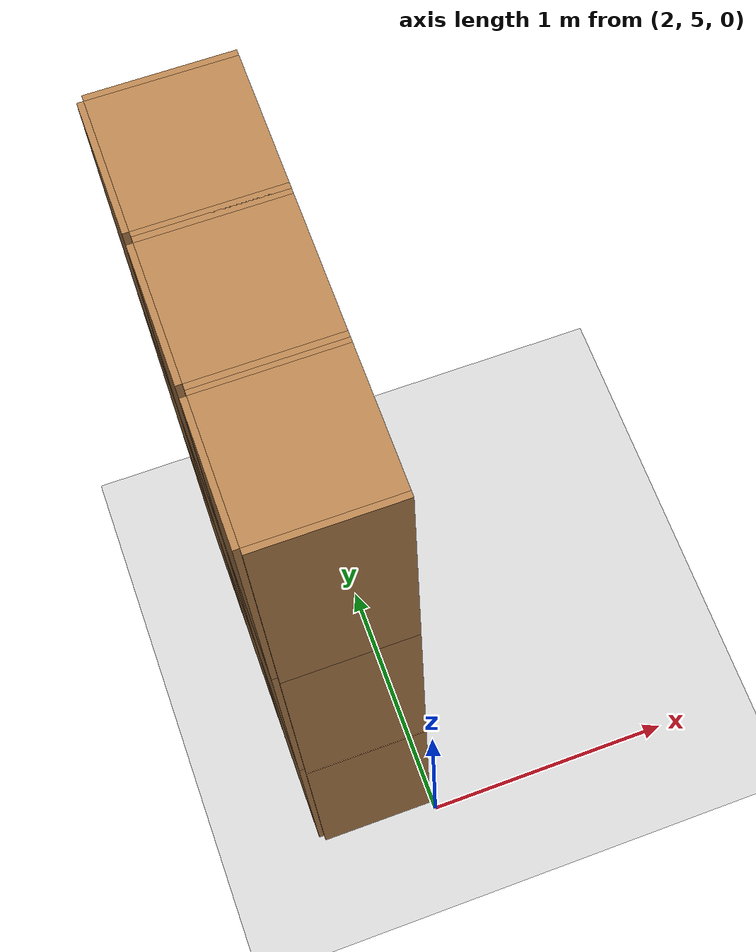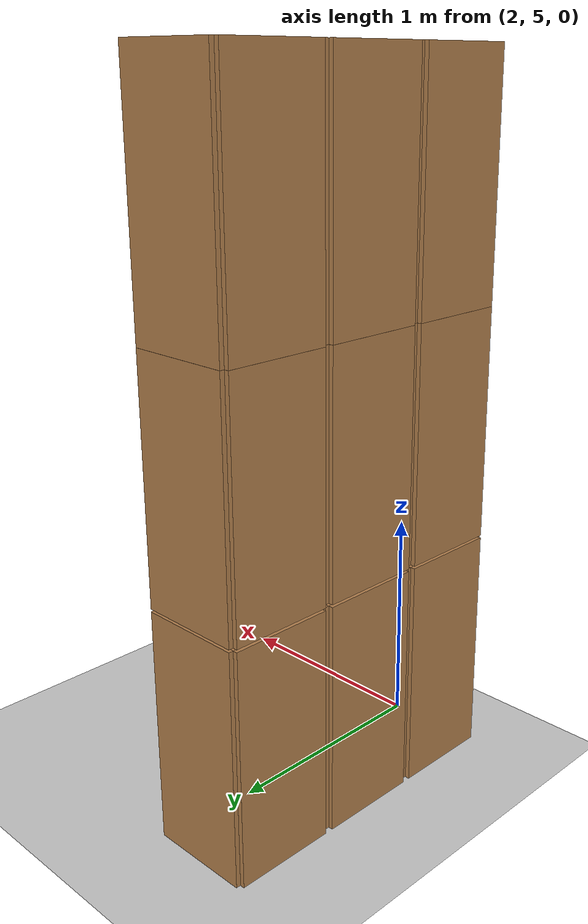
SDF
<sdf version="1.6">
 <world name="default">
  <model name="ground_plane">
   <static>1</static>
   <link name="link">
    <collision name="collision">
     <geometry><plane><normal>0 0 1</normal><size>100 100</size></plane></geometry>
     <surface>
      <contact><collide_bitmask>65535</collide_bitmask></contact>
      <friction><ode><mu>100</mu><mu2>50</mu2></ode></friction>
     </surface>
    </collision>
    <visual name="visual">
     <cast_shadows>0</cast_shadows>
     <geometry><plane><normal>0 0 1</normal><size>100 100</size></plane></geometry>
     <material>
      <script><uri>file://media/materials/scripts/gazebo.material</uri><name>Gazebo/Grey</name></script>
     </material>
    </visual>
   </link>
  </model>
  <model name="Locker18_clone_4_clone_2_clone_1_clone_clone_clone_1">
   <model name="Locker18">
    <model name="Locker3">
     <model name="cabinet">
      <static>1</static>
      <link name="cabinet_bottom_plate">
       <inertial>
        <pose>0 0 -1 0 -0 0</pose>
        <inertia><ixx>2.05</ixx><ixy>0</ixy><ixz>0</ixz><iyy>2.05</iyy><iyz>0</iyz><izz>2.05</izz></inertia>
        <mass>25</mass>
       </inertial>
       <collision name="cabinet_bottom_plate_geom">
        <pose>0 0 0.01 0 -0 0</pose>
        <geometry><box><size>0.45 0.45 0.02</size></box></geometry>
       </collision>
       <visual name="cabinet_bottom_plate_geom_visual">
        <pose>0 0 0.01 0 -0 0</pose>
        <geometry><box><size>0.45 0.45 0.02</size></box></geometry>
        <material>
         <script><uri>file://media/materials/scripts/gazebo.material</uri><name>Gazebo/Wood</name></script>
        </material>
       </visual>
       <collision name="cabinet_bottom_plate_geom_cabinet_back_plate">
        <pose>0.235 0 0.51 0 -0 0</pose>
        <geometry><box><size>0.02 0.45 1.02</size></box></geometry>
       </collision>
       <visual name="cabinet_bottom_plate_geom_cabinet_back_plate_visual">
        <pose>0.235 0 0.51 0 -0 0</pose>
        <geometry><box><size>0.02 0.45 1.02</size></box></geometry>
        <material>
         <script><uri>file://media/materials/scripts/gazebo.material</uri><name>Gazebo/Wood</name></script>
        </material>
       </visual>
       <collision name="cabinet_bottom_plate_geom_cabinet_left_plate">
        <pose>0 0.235 0.51 0 -0 0</pose>
        <geometry><box><size>0.45 0.02 1.02</size></box></geometry>
       </collision>
       <visual name="cabinet_bottom_plate_geom_cabinet_left_plate_visual">
        <pose>0 0.235 0.51 0 -0 0</pose>
        <geometry><box><size>0.45 0.02 1.02</size></box></geometry>
        <material>
         <script><uri>file://media/materials/scripts/gazebo.material</uri><name>Gazebo/Wood</name></script>
        </material>
       </visual>
       <collision name="cabinet_bottom_plate_geom_cabinet_middle_plate">
        <pose>0 0 0.51 0 -0 0</pose>
        <geometry><box><size>0.45 0.45 0.02</size></box></geometry>
       </collision>
       <visual name="cabinet_bottom_plate_geom_cabinet_middle_plate_visual">
        <pose>0 0 0.51 0 -0 0</pose>
        <geometry><box><size>0.45 0.45 0.02</size></box></geometry>
        <material>
         <script><uri>file://media/materials/scripts/gazebo.material</uri><name>Gazebo/Wood</name></script>
        </material>
       </visual>
       <collision name="cabinet_bottom_plate_geom_cabinet_right_plate">
        <pose>0 -0.235 0.51 0 -0 0</pose>
        <geometry><box><size>0.45 0.02 1.02</size></box></geometry>
       </collision>
       <visual name="cabinet_bottom_plate_geom_cabinet_right_plate_visual">
        <pose>0 -0.235 0.51 0 -0 0</pose>
        <geometry><box><size>0.45 0.02 1.02</size></box></geometry>
        <material>
         <script><uri>file://media/materials/scripts/gazebo.material</uri><name>Gazebo/Wood</name></script>
        </material>
       </visual>
       <collision name="cabinet_bottom_plate_geom_cabinet_top_plate">
        <pose>0 0 1.01 0 -0 0</pose>
        <geometry><box><size>0.45 0.45 0.02</size></box></geometry>
       </collision>
       <visual name="cabinet_bottom_plate_geom_cabinet_top_plate_visual">
        <pose>0 0 1.01 0 -0 0</pose>
        <geometry><box><size>0.45 0.45 0.02</size></box></geometry>
        <material>
         <script><uri>file://media/materials/scripts/gazebo.material</uri><name>Gazebo/Wood</name></script>
        </material>
       </visual>
      </link>
      <pose>-0.676968 1.45758 0 0 -0 0</pose>
     </model>
     <model name="cabinet_clone">
      <static>1</static>
      <link name="cabinet_bottom_plate">
       <inertial>
        <pose>0 0 -1 0 -0 0</pose>
        <inertia><ixx>2.05</ixx><ixy>0</ixy><ixz>0</ixz><iyy>2.05</iyy><iyz>0</iyz><izz>2.05</izz></inertia>
        <mass>25</mass>
       </inertial>
       <collision name="cabinet_bottom_plate_geom">
        <pose>0 0 0.01 0 -0 0</pose>
        <geometry><box><size>0.45 0.45 0.02</size></box></geometry>
       </collision>
       <visual name="cabinet_bottom_plate_geom_visual">
        <pose>0 0 0.01 0 -0 0</pose>
        <geometry><box><size>0.45 0.45 0.02</size></box></geometry>
        <material>
         <script><uri>file://media/materials/scripts/gazebo.material</uri><name>Gazebo/Wood</name></script>
        </material>
       </visual>
       <collision name="cabinet_bottom_plate_geom_cabinet_back_plate">
        <pose>0.235 0 0.51 0 -0 0</pose>
        <geometry><box><size>0.02 0.45 1.02</size></box></geometry>
       </collision>
       <visual name="cabinet_bottom_plate_geom_cabinet_back_plate_visual">
        <pose>0.235 0 0.51 0 -0 0</pose>
        <geometry><box><size>0.02 0.45 1.02</size></box></geometry>
        <material>
         <script><uri>file://media/materials/scripts/gazebo.material</uri><name>Gazebo/Wood</name></script>
        </material>
       </visual>
       <collision name="cabinet_bottom_plate_geom_cabinet_left_plate">
        <pose>0 0.235 0.51 0 -0 0</pose>
        <geometry><box><size>0.45 0.02 1.02</size></box></geometry>
       </collision>
       <visual name="cabinet_bottom_plate_geom_cabinet_left_plate_visual">
        <pose>0 0.235 0.51 0 -0 0</pose>
        <geometry><box><size>0.45 0.02 1.02</size></box></geometry>
        <material>
         <script><uri>file://media/materials/scripts/gazebo.material</uri><name>Gazebo/Wood</name></script>
        </material>
       </visual>
       <collision name="cabinet_bottom_plate_geom_cabinet_middle_plate">
        <pose>0 0 0.51 0 -0 0</pose>
        <geometry><box><size>0.45 0.45 0.02</size></box></geometry>
       </collision>
       <visual name="cabinet_bottom_plate_geom_cabinet_middle_plate_visual">
        <pose>0 0 0.51 0 -0 0</pose>
        <geometry><box><size>0.45 0.45 0.02</size></box></geometry>
        <material>
         <script><uri>file://media/materials/scripts/gazebo.material</uri><name>Gazebo/Wood</name></script>
        </material>
       </visual>
       <collision name="cabinet_bottom_plate_geom_cabinet_right_plate">
        <pose>0 -0.235 0.51 0 -0 0</pose>
        <geometry><box><size>0.45 0.02 1.02</size></box></geometry>
       </collision>
       <visual name="cabinet_bottom_plate_geom_cabinet_right_plate_visual">
        <pose>0 -0.235 0.51 0 -0 0</pose>
        <geometry><box><size>0.45 0.02 1.02</size></box></geometry>
        <material>
         <script><uri>file://media/materials/scripts/gazebo.material</uri><name>Gazebo/Wood</name></script>
        </material>
       </visual>
       <collision name="cabinet_bottom_plate_geom_cabinet_top_plate">
        <pose>0 0 1.01 0 -0 0</pose>
        <geometry><box><size>0.45 0.45 0.02</size></box></geometry>
       </collision>
       <visual name="cabinet_bottom_plate_geom_cabinet_top_plate_visual">
        <pose>0 0 1.01 0 -0 0</pose>
        <geometry><box><size>0.45 0.45 0.02</size></box></geometry>
        <material>
         <script><uri>file://media/materials/scripts/gazebo.material</uri><name>Gazebo/Wood</name></script>
        </material>
       </visual>
      </link>
      <pose>-0.676968 0.970971 0 0 -0 0</pose>
     </model>
     <model name="cabinet_clone_0">
      <static>1</static>
      <link name="cabinet_bottom_plate">
       <inertial>
        <pose>0 0 -1 0 -0 0</pose>
        <inertia><ixx>2.05</ixx><ixy>0</ixy><ixz>0</ixz><iyy>2.05</iyy><iyz>0</iyz><izz>2.05</izz></inertia>
        <mass>25</mass>
       </inertial>
       <collision name="cabinet_bottom_plate_geom">
        <pose>0 0 0.01 0 -0 0</pose>
        <geometry><box><size>0.45 0.45 0.02</size></box></geometry>
       </collision>
       <visual name="cabinet_bottom_plate_geom_visual">
        <pose>0 0 0.01 0 -0 0</pose>
        <geometry><box><size>0.45 0.45 0.02</size></box></geometry>
        <material>
         <script><uri>file://media/materials/scripts/gazebo.material</uri><name>Gazebo/Wood</name></script>
        </material>
       </visual>
       <collision name="cabinet_bottom_plate_geom_cabinet_back_plate">
        <pose>0.235 0 0.51 0 -0 0</pose>
        <geometry><box><size>0.02 0.45 1.02</size></box></geometry>
       </collision>
       <visual name="cabinet_bottom_plate_geom_cabinet_back_plate_visual">
        <pose>0.235 0 0.51 0 -0 0</pose>
        <geometry><box><size>0.02 0.45 1.02</size></box></geometry>
        <material>
         <script><uri>file://media/materials/scripts/gazebo.material</uri><name>Gazebo/Wood</name></script>
        </material>
       </visual>
       <collision name="cabinet_bottom_plate_geom_cabinet_left_plate">
        <pose>0 0.235 0.51 0 -0 0</pose>
        <geometry><box><size>0.45 0.02 1.02</size></box></geometry>
       </collision>
       <visual name="cabinet_bottom_plate_geom_cabinet_left_plate_visual">
        <pose>0 0.235 0.51 0 -0 0</pose>
        <geometry><box><size>0.45 0.02 1.02</size></box></geometry>
        <material>
         <script><uri>file://media/materials/scripts/gazebo.material</uri><name>Gazebo/Wood</name></script>
        </material>
       </visual>
       <collision name="cabinet_bottom_plate_geom_cabinet_middle_plate">
        <pose>0 0 0.51 0 -0 0</pose>
        <geometry><box><size>0.45 0.45 0.02</size></box></geometry>
       </collision>
       <visual name="cabinet_bottom_plate_geom_cabinet_middle_plate_visual">
        <pose>0 0 0.51 0 -0 0</pose>
        <geometry><box><size>0.45 0.45 0.02</size></box></geometry>
        <material>
         <script><uri>file://media/materials/scripts/gazebo.material</uri><name>Gazebo/Wood</name></script>
        </material>
       </visual>
       <collision name="cabinet_bottom_plate_geom_cabinet_right_plate">
        <pose>0 -0.235 0.51 0 -0 0</pose>
        <geometry><box><size>0.45 0.02 1.02</size></box></geometry>
       </collision>
       <visual name="cabinet_bottom_plate_geom_cabinet_right_plate_visual">
        <pose>0 -0.235 0.51 0 -0 0</pose>
        <geometry><box><size>0.45 0.02 1.02</size></box></geometry>
        <material>
         <script><uri>file://media/materials/scripts/gazebo.material</uri><name>Gazebo/Wood</name></script>
        </material>
       </visual>
       <collision name="cabinet_bottom_plate_geom_cabinet_top_plate">
        <pose>0 0 1.01 0 -0 0</pose>
        <geometry><box><size>0.45 0.45 0.02</size></box></geometry>
       </collision>
       <visual name="cabinet_bottom_plate_geom_cabinet_top_plate_visual">
        <pose>0 0 1.01 0 -0 0</pose>
        <geometry><box><size>0.45 0.45 0.02</size></box></geometry>
        <material>
         <script><uri>file://media/materials/scripts/gazebo.material</uri><name>Gazebo/Wood</name></script>
        </material>
       </visual>
      </link>
      <pose>-0.676968 0.48391 0 0 -0 0</pose>
     </model>
     <static>0</static>
     <pose>0 3e-06 -1.02763 0 -0 0</pose>
    </model>
    <model name="Locker3_clone">
     <model name="cabinet">
      <static>1</static>
      <link name="cabinet_bottom_plate">
       <inertial>
        <pose>0 0 -1 0 -0 0</pose>
        <inertia><ixx>2.05</ixx><ixy>0</ixy><ixz>0</ixz><iyy>2.05</iyy><iyz>0</iyz><izz>2.05</izz></inertia>
        <mass>25</mass>
       </inertial>
       <collision name="cabinet_bottom_plate_geom">
        <pose>0 0 0.01 0 -0 0</pose>
        <geometry><box><size>0.45 0.45 0.02</size></box></geometry>
       </collision>
       <visual name="cabinet_bottom_plate_geom_visual">
        <pose>0 0 0.01 0 -0 0</pose>
        <geometry><box><size>0.45 0.45 0.02</size></box></geometry>
        <material>
         <script><uri>file://media/materials/scripts/gazebo.material</uri><name>Gazebo/Wood</name></script>
        </material>
       </visual>
       <collision name="cabinet_bottom_plate_geom_cabinet_back_plate">
        <pose>0.235 0 0.51 0 -0 0</pose>
        <geometry><box><size>0.02 0.45 1.02</size></box></geometry>
       </collision>
       <visual name="cabinet_bottom_plate_geom_cabinet_back_plate_visual">
        <pose>0.235 0 0.51 0 -0 0</pose>
        <geometry><box><size>0.02 0.45 1.02</size></box></geometry>
        <material>
         <script><uri>file://media/materials/scripts/gazebo.material</uri><name>Gazebo/Wood</name></script>
        </material>
       </visual>
       <collision name="cabinet_bottom_plate_geom_cabinet_left_plate">
        <pose>0 0.235 0.51 0 -0 0</pose>
        <geometry><box><size>0.45 0.02 1.02</size></box></geometry>
       </collision>
       <visual name="cabinet_bottom_plate_geom_cabinet_left_plate_visual">
        <pose>0 0.235 0.51 0 -0 0</pose>
        <geometry><box><size>0.45 0.02 1.02</size></box></geometry>
        <material>
         <script><uri>file://media/materials/scripts/gazebo.material</uri><name>Gazebo/Wood</name></script>
        </material>
       </visual>
       <collision name="cabinet_bottom_plate_geom_cabinet_middle_plate">
        <pose>0 0 0.51 0 -0 0</pose>
        <geometry><box><size>0.45 0.45 0.02</size></box></geometry>
       </collision>
       <visual name="cabinet_bottom_plate_geom_cabinet_middle_plate_visual">
        <pose>0 0 0.51 0 -0 0</pose>
        <geometry><box><size>0.45 0.45 0.02</size></box></geometry>
        <material>
         <script><uri>file://media/materials/scripts/gazebo.material</uri><name>Gazebo/Wood</name></script>
        </material>
       </visual>
       <collision name="cabinet_bottom_plate_geom_cabinet_right_plate">
        <pose>0 -0.235 0.51 0 -0 0</pose>
        <geometry><box><size>0.45 0.02 1.02</size></box></geometry>
       </collision>
       <visual name="cabinet_bottom_plate_geom_cabinet_right_plate_visual">
        <pose>0 -0.235 0.51 0 -0 0</pose>
        <geometry><box><size>0.45 0.02 1.02</size></box></geometry>
        <material>
         <script><uri>file://media/materials/scripts/gazebo.material</uri><name>Gazebo/Wood</name></script>
        </material>
       </visual>
       <collision name="cabinet_bottom_plate_geom_cabinet_top_plate">
        <pose>0 0 1.01 0 -0 0</pose>
        <geometry><box><size>0.45 0.45 0.02</size></box></geometry>
       </collision>
       <visual name="cabinet_bottom_plate_geom_cabinet_top_plate_visual">
        <pose>0 0 1.01 0 -0 0</pose>
        <geometry><box><size>0.45 0.45 0.02</size></box></geometry>
        <material>
         <script><uri>file://media/materials/scripts/gazebo.material</uri><name>Gazebo/Wood</name></script>
        </material>
       </visual>
      </link>
      <pose>-0.676968 1.45758 0 0 -0 0</pose>
     </model>
     <model name="cabinet_clone">
      <static>1</static>
      <link name="cabinet_bottom_plate">
       <inertial>
        <pose>0 0 -1 0 -0 0</pose>
        <inertia><ixx>2.05</ixx><ixy>0</ixy><ixz>0</ixz><iyy>2.05</iyy><iyz>0</iyz><izz>2.05</izz></inertia>
        <mass>25</mass>
       </inertial>
       <collision name="cabinet_bottom_plate_geom">
        <pose>0 0 0.01 0 -0 0</pose>
        <geometry><box><size>0.45 0.45 0.02</size></box></geometry>
       </collision>
       <visual name="cabinet_bottom_plate_geom_visual">
        <pose>0 0 0.01 0 -0 0</pose>
        <geometry><box><size>0.45 0.45 0.02</size></box></geometry>
        <material>
         <script><uri>file://media/materials/scripts/gazebo.material</uri><name>Gazebo/Wood</name></script>
        </material>
       </visual>
       <collision name="cabinet_bottom_plate_geom_cabinet_back_plate">
        <pose>0.235 0 0.51 0 -0 0</pose>
        <geometry><box><size>0.02 0.45 1.02</size></box></geometry>
       </collision>
       <visual name="cabinet_bottom_plate_geom_cabinet_back_plate_visual">
        <pose>0.235 0 0.51 0 -0 0</pose>
        <geometry><box><size>0.02 0.45 1.02</size></box></geometry>
        <material>
         <script><uri>file://media/materials/scripts/gazebo.material</uri><name>Gazebo/Wood</name></script>
        </material>
       </visual>
       <collision name="cabinet_bottom_plate_geom_cabinet_left_plate">
        <pose>0 0.235 0.51 0 -0 0</pose>
        <geometry><box><size>0.45 0.02 1.02</size></box></geometry>
       </collision>
       <visual name="cabinet_bottom_plate_geom_cabinet_left_plate_visual">
        <pose>0 0.235 0.51 0 -0 0</pose>
        <geometry><box><size>0.45 0.02 1.02</size></box></geometry>
        <material>
         <script><uri>file://media/materials/scripts/gazebo.material</uri><name>Gazebo/Wood</name></script>
        </material>
       </visual>
       <collision name="cabinet_bottom_plate_geom_cabinet_middle_plate">
        <pose>0 0 0.51 0 -0 0</pose>
        <geometry><box><size>0.45 0.45 0.02</size></box></geometry>
       </collision>
       <visual name="cabinet_bottom_plate_geom_cabinet_middle_plate_visual">
        <pose>0 0 0.51 0 -0 0</pose>
        <geometry><box><size>0.45 0.45 0.02</size></box></geometry>
        <material>
         <script><uri>file://media/materials/scripts/gazebo.material</uri><name>Gazebo/Wood</name></script>
        </material>
       </visual>
       <collision name="cabinet_bottom_plate_geom_cabinet_right_plate">
        <pose>0 -0.235 0.51 0 -0 0</pose>
        <geometry><box><size>0.45 0.02 1.02</size></box></geometry>
       </collision>
       <visual name="cabinet_bottom_plate_geom_cabinet_right_plate_visual">
        <pose>0 -0.235 0.51 0 -0 0</pose>
        <geometry><box><size>0.45 0.02 1.02</size></box></geometry>
        <material>
         <script><uri>file://media/materials/scripts/gazebo.material</uri><name>Gazebo/Wood</name></script>
        </material>
       </visual>
       <collision name="cabinet_bottom_plate_geom_cabinet_top_plate">
        <pose>0 0 1.01 0 -0 0</pose>
        <geometry><box><size>0.45 0.45 0.02</size></box></geometry>
       </collision>
       <visual name="cabinet_bottom_plate_geom_cabinet_top_plate_visual">
        <pose>0 0 1.01 0 -0 0</pose>
        <geometry><box><size>0.45 0.45 0.02</size></box></geometry>
        <material>
         <script><uri>file://media/materials/scripts/gazebo.material</uri><name>Gazebo/Wood</name></script>
        </material>
       </visual>
      </link>
      <pose>-0.676968 0.970971 0 0 -0 0</pose>
     </model>
     <model name="cabinet_clone_0">
      <static>1</static>
      <link name="cabinet_bottom_plate">
       <inertial>
        <pose>0 0 -1 0 -0 0</pose>
        <inertia><ixx>2.05</ixx><ixy>0</ixy><ixz>0</ixz><iyy>2.05</iyy><iyz>0</iyz><izz>2.05</izz></inertia>
        <mass>25</mass>
       </inertial>
       <collision name="cabinet_bottom_plate_geom">
        <pose>0 0 0.01 0 -0 0</pose>
        <geometry><box><size>0.45 0.45 0.02</size></box></geometry>
       </collision>
       <visual name="cabinet_bottom_plate_geom_visual">
        <pose>0 0 0.01 0 -0 0</pose>
        <geometry><box><size>0.45 0.45 0.02</size></box></geometry>
        <material>
         <script><uri>file://media/materials/scripts/gazebo.material</uri><name>Gazebo/Wood</name></script>
        </material>
       </visual>
       <collision name="cabinet_bottom_plate_geom_cabinet_back_plate">
        <pose>0.235 0 0.51 0 -0 0</pose>
        <geometry><box><size>0.02 0.45 1.02</size></box></geometry>
       </collision>
       <visual name="cabinet_bottom_plate_geom_cabinet_back_plate_visual">
        <pose>0.235 0 0.51 0 -0 0</pose>
        <geometry><box><size>0.02 0.45 1.02</size></box></geometry>
        <material>
         <script><uri>file://media/materials/scripts/gazebo.material</uri><name>Gazebo/Wood</name></script>
        </material>
       </visual>
       <collision name="cabinet_bottom_plate_geom_cabinet_left_plate">
        <pose>0 0.235 0.51 0 -0 0</pose>
        <geometry><box><size>0.45 0.02 1.02</size></box></geometry>
       </collision>
       <visual name="cabinet_bottom_plate_geom_cabinet_left_plate_visual">
        <pose>0 0.235 0.51 0 -0 0</pose>
        <geometry><box><size>0.45 0.02 1.02</size></box></geometry>
        <material>
         <script><uri>file://media/materials/scripts/gazebo.material</uri><name>Gazebo/Wood</name></script>
        </material>
       </visual>
       <collision name="cabinet_bottom_plate_geom_cabinet_middle_plate">
        <pose>0 0 0.51 0 -0 0</pose>
        <geometry><box><size>0.45 0.45 0.02</size></box></geometry>
       </collision>
       <visual name="cabinet_bottom_plate_geom_cabinet_middle_plate_visual">
        <pose>0 0 0.51 0 -0 0</pose>
        <geometry><box><size>0.45 0.45 0.02</size></box></geometry>
        <material>
         <script><uri>file://media/materials/scripts/gazebo.material</uri><name>Gazebo/Wood</name></script>
        </material>
       </visual>
       <collision name="cabinet_bottom_plate_geom_cabinet_right_plate">
        <pose>0 -0.235 0.51 0 -0 0</pose>
        <geometry><box><size>0.45 0.02 1.02</size></box></geometry>
       </collision>
       <visual name="cabinet_bottom_plate_geom_cabinet_right_plate_visual">
        <pose>0 -0.235 0.51 0 -0 0</pose>
        <geometry><box><size>0.45 0.02 1.02</size></box></geometry>
        <material>
         <script><uri>file://media/materials/scripts/gazebo.material</uri><name>Gazebo/Wood</name></script>
        </material>
       </visual>
       <collision name="cabinet_bottom_plate_geom_cabinet_top_plate">
        <pose>0 0 1.01 0 -0 0</pose>
        <geometry><box><size>0.45 0.45 0.02</size></box></geometry>
       </collision>
       <visual name="cabinet_bottom_plate_geom_cabinet_top_plate_visual">
        <pose>0 0 1.01 0 -0 0</pose>
        <geometry><box><size>0.45 0.45 0.02</size></box></geometry>
        <material>
         <script><uri>file://media/materials/scripts/gazebo.material</uri><name>Gazebo/Wood</name></script>
        </material>
       </visual>
      </link>
      <pose>-0.676968 0.48391 0 0 -0 0</pose>
     </model>
     <static>0</static>
     <pose>0 3e-06 0.003717 0 -0 0</pose>
    </model>
    <model name="Locker3_clone_clone">
     <model name="cabinet">
      <static>1</static>
      <link name="cabinet_bottom_plate">
       <inertial>
        <pose>0 0 -1 0 -0 0</pose>
        <inertia><ixx>2.05</ixx><ixy>0</ixy><ixz>0</ixz><iyy>2.05</iyy><iyz>0</iyz><izz>2.05</izz></inertia>
        <mass>25</mass>
       </inertial>
       <collision name="cabinet_bottom_plate_geom">
        <pose>0 0 0.01 0 -0 0</pose>
        <geometry><box><size>0.45 0.45 0.02</size></box></geometry>
       </collision>
       <visual name="cabinet_bottom_plate_geom_visual">
        <pose>0 0 0.01 0 -0 0</pose>
        <geometry><box><size>0.45 0.45 0.02</size></box></geometry>
        <material>
         <script><uri>file://media/materials/scripts/gazebo.material</uri><name>Gazebo/Wood</name></script>
        </material>
       </visual>
       <collision name="cabinet_bottom_plate_geom_cabinet_back_plate">
        <pose>0.235 0 0.51 0 -0 0</pose>
        <geometry><box><size>0.02 0.45 1.02</size></box></geometry>
       </collision>
       <visual name="cabinet_bottom_plate_geom_cabinet_back_plate_visual">
        <pose>0.235 0 0.51 0 -0 0</pose>
        <geometry><box><size>0.02 0.45 1.02</size></box></geometry>
        <material>
         <script><uri>file://media/materials/scripts/gazebo.material</uri><name>Gazebo/Wood</name></script>
        </material>
       </visual>
       <collision name="cabinet_bottom_plate_geom_cabinet_left_plate">
        <pose>0 0.235 0.51 0 -0 0</pose>
        <geometry><box><size>0.45 0.02 1.02</size></box></geometry>
       </collision>
       <visual name="cabinet_bottom_plate_geom_cabinet_left_plate_visual">
        <pose>0 0.235 0.51 0 -0 0</pose>
        <geometry><box><size>0.45 0.02 1.02</size></box></geometry>
        <material>
         <script><uri>file://media/materials/scripts/gazebo.material</uri><name>Gazebo/Wood</name></script>
        </material>
       </visual>
       <collision name="cabinet_bottom_plate_geom_cabinet_middle_plate">
        <pose>0 0 0.51 0 -0 0</pose>
        <geometry><box><size>0.45 0.45 0.02</size></box></geometry>
       </collision>
       <visual name="cabinet_bottom_plate_geom_cabinet_middle_plate_visual">
        <pose>0 0 0.51 0 -0 0</pose>
        <geometry><box><size>0.45 0.45 0.02</size></box></geometry>
        <material>
         <script><uri>file://media/materials/scripts/gazebo.material</uri><name>Gazebo/Wood</name></script>
        </material>
       </visual>
       <collision name="cabinet_bottom_plate_geom_cabinet_right_plate">
        <pose>0 -0.235 0.51 0 -0 0</pose>
        <geometry><box><size>0.45 0.02 1.02</size></box></geometry>
       </collision>
       <visual name="cabinet_bottom_plate_geom_cabinet_right_plate_visual">
        <pose>0 -0.235 0.51 0 -0 0</pose>
        <geometry><box><size>0.45 0.02 1.02</size></box></geometry>
        <material>
         <script><uri>file://media/materials/scripts/gazebo.material</uri><name>Gazebo/Wood</name></script>
        </material>
       </visual>
       <collision name="cabinet_bottom_plate_geom_cabinet_top_plate">
        <pose>0 0 1.01 0 -0 0</pose>
        <geometry><box><size>0.45 0.45 0.02</size></box></geometry>
       </collision>
       <visual name="cabinet_bottom_plate_geom_cabinet_top_plate_visual">
        <pose>0 0 1.01 0 -0 0</pose>
        <geometry><box><size>0.45 0.45 0.02</size></box></geometry>
        <material>
         <script><uri>file://media/materials/scripts/gazebo.material</uri><name>Gazebo/Wood</name></script>
        </material>
       </visual>
      </link>
      <pose>-0.676968 1.45758 0 0 -0 0</pose>
     </model>
     <model name="cabinet_clone">
      <static>1</static>
      <link name="cabinet_bottom_plate">
       <inertial>
        <pose>0 0 -1 0 -0 0</pose>
        <inertia><ixx>2.05</ixx><ixy>0</ixy><ixz>0</ixz><iyy>2.05</iyy><iyz>0</iyz><izz>2.05</izz></inertia>
        <mass>25</mass>
       </inertial>
       <collision name="cabinet_bottom_plate_geom">
        <pose>0 0 0.01 0 -0 0</pose>
        <geometry><box><size>0.45 0.45 0.02</size></box></geometry>
       </collision>
       <visual name="cabinet_bottom_plate_geom_visual">
        <pose>0 0 0.01 0 -0 0</pose>
        <geometry><box><size>0.45 0.45 0.02</size></box></geometry>
        <material>
         <script><uri>file://media/materials/scripts/gazebo.material</uri><name>Gazebo/Wood</name></script>
        </material>
       </visual>
       <collision name="cabinet_bottom_plate_geom_cabinet_back_plate">
        <pose>0.235 0 0.51 0 -0 0</pose>
        <geometry><box><size>0.02 0.45 1.02</size></box></geometry>
       </collision>
       <visual name="cabinet_bottom_plate_geom_cabinet_back_plate_visual">
        <pose>0.235 0 0.51 0 -0 0</pose>
        <geometry><box><size>0.02 0.45 1.02</size></box></geometry>
        <material>
         <script><uri>file://media/materials/scripts/gazebo.material</uri><name>Gazebo/Wood</name></script>
        </material>
       </visual>
       <collision name="cabinet_bottom_plate_geom_cabinet_left_plate">
        <pose>0 0.235 0.51 0 -0 0</pose>
        <geometry><box><size>0.45 0.02 1.02</size></box></geometry>
       </collision>
       <visual name="cabinet_bottom_plate_geom_cabinet_left_plate_visual">
        <pose>0 0.235 0.51 0 -0 0</pose>
        <geometry><box><size>0.45 0.02 1.02</size></box></geometry>
        <material>
         <script><uri>file://media/materials/scripts/gazebo.material</uri><name>Gazebo/Wood</name></script>
        </material>
       </visual>
       <collision name="cabinet_bottom_plate_geom_cabinet_middle_plate">
        <pose>0 0 0.51 0 -0 0</pose>
        <geometry><box><size>0.45 0.45 0.02</size></box></geometry>
       </collision>
       <visual name="cabinet_bottom_plate_geom_cabinet_middle_plate_visual">
        <pose>0 0 0.51 0 -0 0</pose>
        <geometry><box><size>0.45 0.45 0.02</size></box></geometry>
        <material>
         <script><uri>file://media/materials/scripts/gazebo.material</uri><name>Gazebo/Wood</name></script>
        </material>
       </visual>
       <collision name="cabinet_bottom_plate_geom_cabinet_right_plate">
        <pose>0 -0.235 0.51 0 -0 0</pose>
        <geometry><box><size>0.45 0.02 1.02</size></box></geometry>
       </collision>
       <visual name="cabinet_bottom_plate_geom_cabinet_right_plate_visual">
        <pose>0 -0.235 0.51 0 -0 0</pose>
        <geometry><box><size>0.45 0.02 1.02</size></box></geometry>
        <material>
         <script><uri>file://media/materials/scripts/gazebo.material</uri><name>Gazebo/Wood</name></script>
        </material>
       </visual>
       <collision name="cabinet_bottom_plate_geom_cabinet_top_plate">
        <pose>0 0 1.01 0 -0 0</pose>
        <geometry><box><size>0.45 0.45 0.02</size></box></geometry>
       </collision>
       <visual name="cabinet_bottom_plate_geom_cabinet_top_plate_visual">
        <pose>0 0 1.01 0 -0 0</pose>
        <geometry><box><size>0.45 0.45 0.02</size></box></geometry>
        <material>
         <script><uri>file://media/materials/scripts/gazebo.material</uri><name>Gazebo/Wood</name></script>
        </material>
       </visual>
      </link>
      <pose>-0.676968 0.970971 0 0 -0 0</pose>
     </model>
     <model name="cabinet_clone_0">
      <static>1</static>
      <link name="cabinet_bottom_plate">
       <inertial>
        <pose>0 0 -1 0 -0 0</pose>
        <inertia><ixx>2.05</ixx><ixy>0</ixy><ixz>0</ixz><iyy>2.05</iyy><iyz>0</iyz><izz>2.05</izz></inertia>
        <mass>25</mass>
       </inertial>
       <collision name="cabinet_bottom_plate_geom">
        <pose>0 0 0.01 0 -0 0</pose>
        <geometry><box><size>0.45 0.45 0.02</size></box></geometry>
       </collision>
       <visual name="cabinet_bottom_plate_geom_visual">
        <pose>0 0 0.01 0 -0 0</pose>
        <geometry><box><size>0.45 0.45 0.02</size></box></geometry>
        <material>
         <script><uri>file://media/materials/scripts/gazebo.material</uri><name>Gazebo/Wood</name></script>
        </material>
       </visual>
       <collision name="cabinet_bottom_plate_geom_cabinet_back_plate">
        <pose>0.235 0 0.51 0 -0 0</pose>
        <geometry><box><size>0.02 0.45 1.02</size></box></geometry>
       </collision>
       <visual name="cabinet_bottom_plate_geom_cabinet_back_plate_visual">
        <pose>0.235 0 0.51 0 -0 0</pose>
        <geometry><box><size>0.02 0.45 1.02</size></box></geometry>
        <material>
         <script><uri>file://media/materials/scripts/gazebo.material</uri><name>Gazebo/Wood</name></script>
        </material>
       </visual>
       <collision name="cabinet_bottom_plate_geom_cabinet_left_plate">
        <pose>0 0.235 0.51 0 -0 0</pose>
        <geometry><box><size>0.45 0.02 1.02</size></box></geometry>
       </collision>
       <visual name="cabinet_bottom_plate_geom_cabinet_left_plate_visual">
        <pose>0 0.235 0.51 0 -0 0</pose>
        <geometry><box><size>0.45 0.02 1.02</size></box></geometry>
        <material>
         <script><uri>file://media/materials/scripts/gazebo.material</uri><name>Gazebo/Wood</name></script>
        </material>
       </visual>
       <collision name="cabinet_bottom_plate_geom_cabinet_middle_plate">
        <pose>0 0 0.51 0 -0 0</pose>
        <geometry><box><size>0.45 0.45 0.02</size></box></geometry>
       </collision>
       <visual name="cabinet_bottom_plate_geom_cabinet_middle_plate_visual">
        <pose>0 0 0.51 0 -0 0</pose>
        <geometry><box><size>0.45 0.45 0.02</size></box></geometry>
        <material>
         <script><uri>file://media/materials/scripts/gazebo.material</uri><name>Gazebo/Wood</name></script>
        </material>
       </visual>
       <collision name="cabinet_bottom_plate_geom_cabinet_right_plate">
        <pose>0 -0.235 0.51 0 -0 0</pose>
        <geometry><box><size>0.45 0.02 1.02</size></box></geometry>
       </collision>
       <visual name="cabinet_bottom_plate_geom_cabinet_right_plate_visual">
        <pose>0 -0.235 0.51 0 -0 0</pose>
        <geometry><box><size>0.45 0.02 1.02</size></box></geometry>
        <material>
         <script><uri>file://media/materials/scripts/gazebo.material</uri><name>Gazebo/Wood</name></script>
        </material>
       </visual>
       <collision name="cabinet_bottom_plate_geom_cabinet_top_plate">
        <pose>0 0 1.01 0 -0 0</pose>
        <geometry><box><size>0.45 0.45 0.02</size></box></geometry>
       </collision>
       <visual name="cabinet_bottom_plate_geom_cabinet_top_plate_visual">
        <pose>0 0 1.01 0 -0 0</pose>
        <geometry><box><size>0.45 0.45 0.02</size></box></geometry>
        <material>
         <script><uri>file://media/materials/scripts/gazebo.material</uri><name>Gazebo/Wood</name></script>
        </material>
       </visual>
      </link>
      <pose>-0.676968 0.48391 0 0 -0 0</pose>
     </model>
     <static>0</static>
     <pose>0 3e-06 1.02391 0 -0 0</pose>
    </model>
    <static>0</static>
    <pose>-0 4e-06 4e-06 0 -0 0</pose>
   </model>
   <static>0</static>
   <pose>1.08178 6.7193 1.08672 0 -0 3.14119</pose>
  </model>
 </world>
</sdf>
